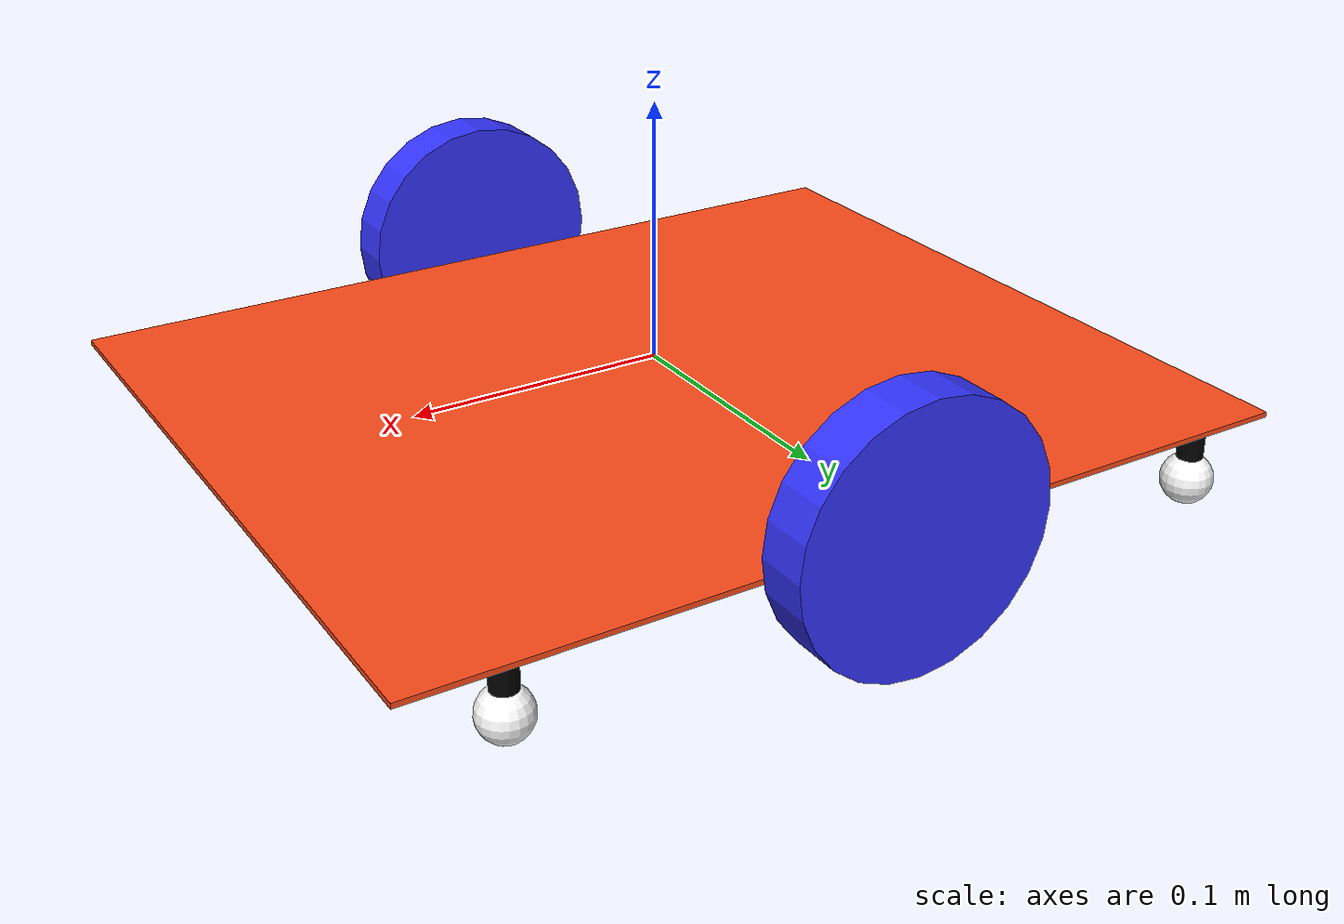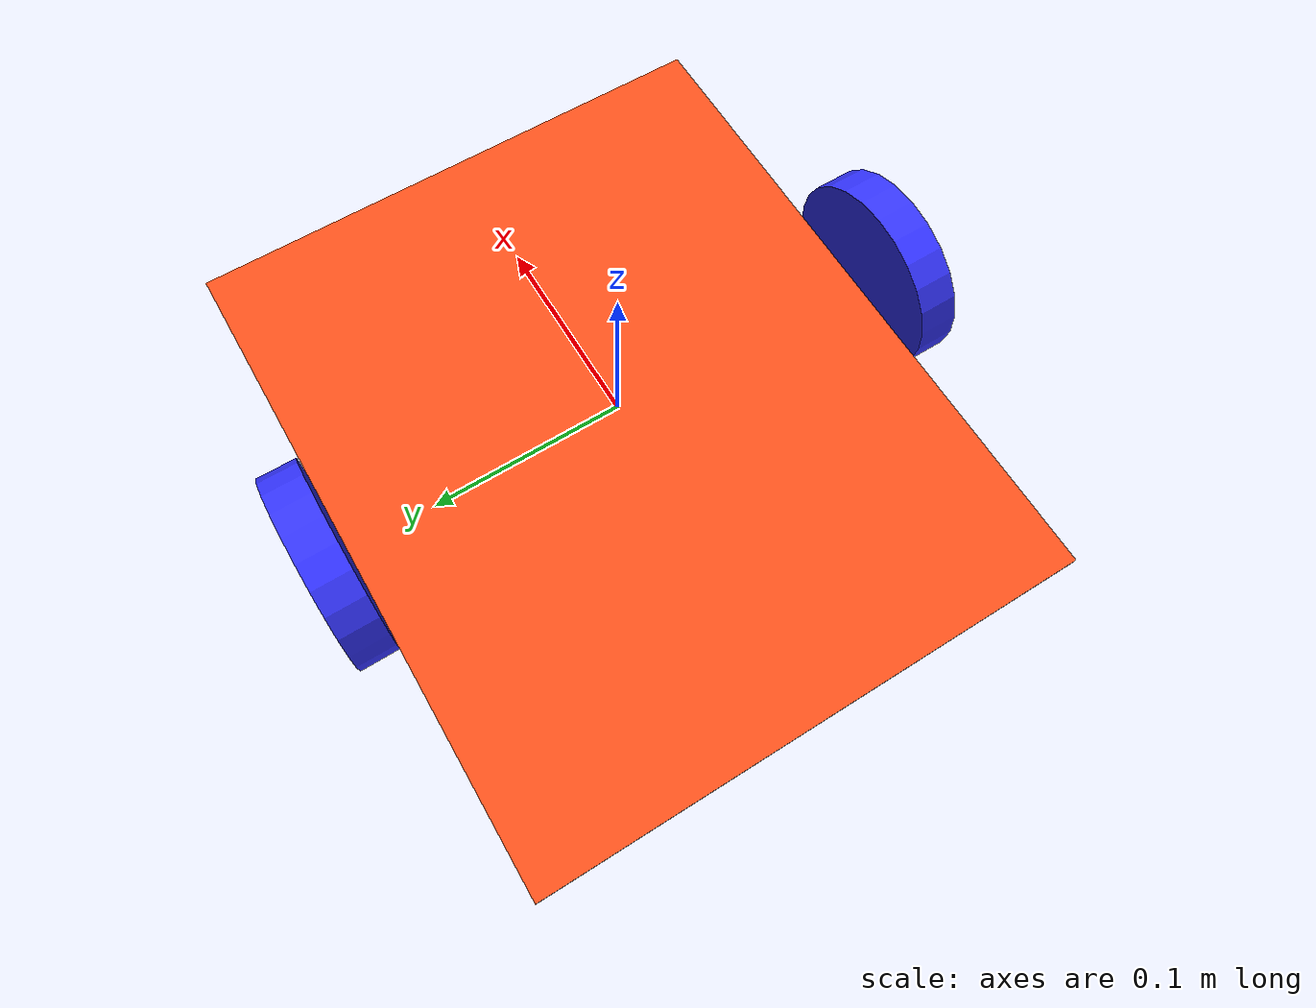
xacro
<?xml version="1.0"?>
<robot xmlns:xacro="http://www.ros.org/wiki/xacro" name = "gdgu_robot">

    <xacro:include filename="robot_inertia.xacro"/>

    <xacro:property name="chassis_length" value="0.35"/>
    <xacro:property name="chassis_width" value="0.29"/>
    <xacro:property name="chassis_height" value="0.002"/>
    <xacro:property name="chassis_mass" value="2.0"/>
    <xacro:property name="wheel_radius" value="0.05"/>
    <xacro:property name="wheel_thickness" value="0.02"/>
    <xacro:property name="wheel_mass" value="0.5"/>
    <xacro:property name="wheel_offset_x" value="0.175"/>
    <xacro:property name="wheel_offset_y" value="0.155"/>
    <xacro:property name="wheel_offset_z" value="0.01"/>
    <xacro:property name="caster_wheel_radius" value="0.01"/>
    <xacro:property name="caster_wheel_mass" value="0.01"/>
    <xacro:property name="caster_wheel_offset_x" value="0.015"/>
    <xacro:property name="caster_wheel_offset_z" value="${wheel_offset_z - wheel_radius + caster_wheel_radius}"/>

    <material name="white">
        <color rgba="1 1 1 1" />
    </material>

    <material name="orange">
        <color rgba="1 0.3 0.1 1"/>
    </material>

    <material name="blue">
        <color rgba="0.2 0.2 1 1"/>
    </material>

    <material name="black">
        <color rgba="0 0 0 1"/>
    </material>

    <material name="red">
        <color rgba="1 0 0 1"/>
    </material>

    <!-- BASE LINK -->

    <link name="base_link">

    </link>

    <!-- BASE_FOOTPRINT LINK -->

    <joint name="base_footprint_joint" type="fixed">
        <parent link="base_link"/>
        <child link="base_footprint"/>
        <origin xyz="0 0 0" rpy="0 0 0"/>
    </joint>

    <link name="base_footprint">
    </link>

    <!-- CHASSIS LINK -->

    <joint name="chassis_joint" type="fixed">
        <parent link="base_link"/>
        <child link="chassis_link"/>
        <origin xyz="${-wheel_offset_x} 0 ${-wheel_offset_z}"/>
    </joint>

    <link name="chassis_link">
        <visual>
            <origin xyz="${chassis_length/2} 0 ${chassis_height/2}"/>
            <geometry>
                <box size="${chassis_length} ${chassis_width} ${chassis_height}"/>
            </geometry>
            <material name="orange"/>
        </visual>
        <collision>
            <origin xyz="${chassis_length/2} 0 ${chassis_height/2}"/>
            <geometry>
                <box size="${chassis_length} ${chassis_width} ${chassis_height}"/>
            </geometry>
        </collision>
        <xacro:inertial_box mass="0.5" x="${chassis_length}" y="${chassis_width}" z="${chassis_height}">
            <origin xyz="${chassis_length/2} 0 ${chassis_height/2}" rpy="0 0 0"/>
        </xacro:inertial_box>
    </link>

    <gazebo reference="chassis_link">
        <material>Gazebo/Orange</material>
    </gazebo>

    <!-- LEFT WHEEL LINK -->

    <joint name="left_wheel" type="continuous">
        <parent link="base_link"/>
        <child link="lfw_link"/>
        <origin xyz="0 ${wheel_offset_y} 0" rpy="-${pi/2} 0 0" />
        <axis xyz="0 0 1"/>
    </joint>

    <transmission name="left_wheel_trans" type="SimpleTransmission">
    <type>transmission_interface/SimpleTransmission</type>
    <actuator name="left_wheel_motor">
      <mechanicalReduction>1</mechanicalReduction>
    </actuator>
    <joint name="left_wheel">
      <hardwareInterface>VelocityJointInterface</hardwareInterface>
    </joint>
    </transmission>

    <link name="lfw_link">
        <visual>
            <geometry>
                <cylinder radius="${wheel_radius}" length="${wheel_thickness}"/>
            </geometry>
            <material name="blue"/>
        </visual>
        <collision>
            <geometry>
                <sphere radius="${wheel_radius}"/>
            </geometry>
        </collision>
        <xacro:inertial_cylinder mass="${wheel_mass}" length="${wheel_thickness}" radius="${wheel_radius}">
            <origin xyz="0 0 0" rpy="0 0 0"/>
        </xacro:inertial_cylinder>
    </link>

    <gazebo reference="lfw_link">
        <material>Gazebo/Blue</material>
    </gazebo>

    <!-- RIGHT WHEEL LINK -->

    <joint name="right_wheel" type="continuous">
        <parent link="base_link"/>
        <child link="rfw_link"/>
        <origin xyz="0 ${-wheel_offset_y} 0" rpy="${pi/2} 0 0" />
        <axis xyz="0 0 -1"/>
    </joint>

    <transmission name="right_wheel_trans" type="SimpleTransmission">
    <type>transmission_interface/SimpleTransmission</type>
    <actuator name="right_wheel_motor">
      <mechanicalReduction>1</mechanicalReduction>
    </actuator>
    <joint name="right_wheel">
      <hardwareInterface>VelocityJointInterface</hardwareInterface>
    </joint>
    </transmission>

    <link name="rfw_link">
        <visual>
            <geometry>
                <cylinder radius="${wheel_radius}" length="${wheel_thickness}"/>
            </geometry>
            <material name="blue"/>
        </visual>
        <collision>
            <geometry>
                <sphere radius="${wheel_radius}"/>
            </geometry>
        </collision>
        <xacro:inertial_cylinder mass="${wheel_mass}" length="${wheel_thickness}" radius="${wheel_radius}">
            <origin xyz="0 0 0" rpy="0 0 0"/>
        </xacro:inertial_cylinder>
    </link>

    <gazebo reference="rfw_link">
        <material>Gazebo/Blue</material>
    </gazebo>

    <!--castor wheels-->

    <joint name="caster_wheel1_joint" type="fixed">
        <parent link="chassis_link"/>
        <child link="caster_wheel1_link"/>
        <origin xyz="${caster_wheel_offset_x} 0.125 ${caster_wheel_offset_z}"/>
    </joint>

    <link name="caster_wheel1_link">
        <visual>
            <geometry>
                <sphere radius="${caster_wheel_radius}"/>
            </geometry>
            <material name="white"/>
        </visual>
        <collision>
            <geometry>
                <sphere radius="${caster_wheel_radius}"/>
            </geometry>
        </collision>
        <xacro:inertial_sphere mass="${caster_wheel_mass}" radius="${caster_wheel_radius}">
            <origin xyz="0 0 0" rpy="0 0 0"/>
        </xacro:inertial_sphere>
    </link>

    <gazebo reference="caster_wheel1_link">
        <material>Gazebo/Red</material>
        <mu1 value="0.001"/>
        <mu2 value="0.001"/>
    </gazebo>

    <joint name="caster_wheel2_joint" type="fixed">
        <parent link="chassis_link"/>
        <child link="caster_wheel2_link"/>
        <origin xyz="${caster_wheel_offset_x} -0.125 ${caster_wheel_offset_z}"/>
    </joint>

    <link name="caster_wheel2_link">
        <visual>
            <geometry>
                <sphere radius="${caster_wheel_radius}"/>
            </geometry>
            <material name="white"/>
        </visual>
        <collision>
            <geometry>
                <sphere radius="${caster_wheel_radius}"/>
            </geometry>
        </collision>
        <xacro:inertial_sphere mass="${caster_wheel_mass}" radius="${caster_wheel_radius}">
            <origin xyz="0 0 0" rpy="0 0 0"/>
        </xacro:inertial_sphere>
    </link>

    <gazebo reference="caster_wheel2_link">
        <material>Gazebo/Red</material>
        <mu1 value="0.001"/>
        <mu2 value="0.001"/>
    </gazebo>

<joint name="caster_wheel3_joint" type="fixed">
        <parent link="chassis_link"/>
        <child link="caster_wheel3_link"/>
        <origin xyz="${caster_wheel_offset_x + 0.29} 0.125 ${caster_wheel_offset_z}"/>
    </joint>

    <link name="caster_wheel3_link">
        <visual>
            <geometry>
                <sphere radius="${caster_wheel_radius}"/>
            </geometry>
            <material name="white"/>
        </visual>
        <collision>
            <geometry>
                <sphere radius="${caster_wheel_radius}"/>
            </geometry>
        </collision>
        <xacro:inertial_sphere mass="${caster_wheel_mass}" radius="${caster_wheel_radius}">
            <origin xyz="0 0 0" rpy="0 0 0"/>
        </xacro:inertial_sphere>
    </link>

    <gazebo reference="caster_wheel3_link">
        <material>Gazebo/Red</material>
        <mu1 value="0.001"/>
        <mu2 value="0.001"/>
    </gazebo>

<joint name="caster_wheel4_joint" type="fixed">
        <parent link="chassis_link"/>
        <child link="caster_wheel4_link"/>
        <origin xyz="${caster_wheel_offset_x + 0.29} -0.125 ${caster_wheel_offset_z}"/>
    </joint>

    <link name="caster_wheel4_link">
        <visual>
            <geometry>
                <sphere radius="${caster_wheel_radius}"/>
            </geometry>
            <material name="white"/>
        </visual>
        <collision>
            <geometry>
                <sphere radius="${caster_wheel_radius}"/>
            </geometry>
        </collision>
        <xacro:inertial_sphere mass="${caster_wheel_mass}" radius="${caster_wheel_radius}">
            <origin xyz="0 0 0" rpy="0 0 0"/>
        </xacro:inertial_sphere>
    </link>

    <gazebo reference="caster_wheel4_link">
        <material>Gazebo/Red</material>
        <mu1 value="0.001"/>
        <mu2 value="0.001"/>
    </gazebo>

    <joint name="connector_cw1_joint" type="fixed">
        <parent link="caster_wheel1_link"/>
        <child link="connector_cw1_link"/>
        <origin xyz="0.0 0.0 0.02" rpy="0 0 0"/>
    </joint>
    <link name="connector_cw1_link">
        <visual>
            <geometry>
                <cylinder radius="0.005" length="0.022"/>
            </geometry>
            <material name="black"/>
        </visual>
        <collision>
            <geometry>
                <cylinder radius="0.005" length="0.022"/>
            </geometry>
        </collision>
        <xacro:inertial_cylinder mass = "0.1" radius = "0.005" length = "0.022">
            <origin xyz="0.0 0.0 0.0" rpy="0.0 0.0 0.0"/>
        </xacro:inertial_cylinder>
    </link>

    <!-- Connector for castor wheel 2 -->
    <joint name="connector_cw2_joint" type="fixed">
        <parent link="caster_wheel2_link"/>
        <child link="connector_cw2_link"/>
        <origin xyz="0.0 0.0 0.02" rpy="0 0 0"/>
    </joint>

    <link name="connector_cw2_link">
        <visual>
            <geometry>
                <cylinder radius="0.005" length="0.022"/>
            </geometry>
            <material name="black"/>
        </visual>
        <collision>
            <geometry>
                <cylinder radius="0.005" length="0.022"/>
            </geometry>
        </collision>
        <xacro:inertial_cylinder mass = "0.1" radius = "0.005" length = "0.022">
            <origin xyz="0.0 0.0 0.0" rpy="0.0 0.0 0.0"/>
        </xacro:inertial_cylinder>
    </link>

    <!-- Connector for castor wheel 3 -->
    <joint name="connector_cw3_joint" type="fixed">
        <parent link="caster_wheel3_link"/>
        <child link="connector_cw3_link"/>
        <origin xyz="0.0 0.0 0.02" rpy="0 0 0"/>
    </joint>
    <link name="connector_cw3_link">
        <visual>
            <geometry>
                <cylinder radius="0.005" length="0.022"/>
            </geometry>
            <material name="black"/>
        </visual>
        <collision>
            <geometry>
                <cylinder radius="0.005" length="0.022"/>
            </geometry>
        </collision>
        <xacro:inertial_cylinder mass = "0.1" radius = "0.005" length = "0.022">
            <origin xyz="0.0 0.0 0.0" rpy="0.0 0.0 0.0"/>
        </xacro:inertial_cylinder>
    </link>

    <!-- Connector for castor wheel 4 -->
    <joint name="connector_cw4_joint" type="fixed">
        <parent link="caster_wheel4_link"/>
        <child link="connector_cw4_link"/>
        <origin xyz="0.0 0.0 0.02" rpy="0 0 0"/>
    </joint>
    <link name="connector_cw4_link">
        <visual>
            <geometry>
                <cylinder radius="0.005" length="0.022"/>
            </geometry>
            <material name="black"/>
        </visual>
        <collision>
            <geometry>
                <cylinder radius="0.005" length="0.022"/>
            </geometry>
        </collision>
        <xacro:inertial_cylinder mass = "0.1" radius = "0.005" length = "0.022">
            <origin xyz="0.0 0.0 0.0" rpy="0.0 0.0 0.0"/>
        </xacro:inertial_cylinder>
    </link>

</robot>

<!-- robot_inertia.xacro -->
<robot xmlns:xacro="http://www.ros.org/wiki/xacro">

    <!--this file represents the mass and inertia of the robot model-->
    <xacro:macro name="inertial_box" params="mass x y z *origin">
        <inertial>
            <xacro:insert_block name="origin"/>
            <mass value="${mass}"/>
            <inertia ixx="${(1/12) * mass * (y*y+z*z)}" ixy="0.0" ixz="0.0"
                    iyy="${(1/12) * mass * (x*x+z*z)}" iyz="0.0"
                    izz="${(1/12) * mass * (x*x+y*y)}" />
        </inertial>
    </xacro:macro>

    <xacro:macro name="inertial_sphere" params="mass radius *origin">
        <inertial>
            <xacro:insert_block name="origin"/>
            <mass value="${mass}"/>
            <inertia ixx="${(2/5) * mass * (radius*radius)}" ixy="0.0" ixz="0.0"
                    iyy="${(2/5) * mass * (radius*radius)}" iyz="0.0"
                    izz="${(2/5) * mass * (radius*radius)}" />
        </inertial>
    </xacro:macro>

    <xacro:macro name="inertial_cylinder" params="mass radius length *origin">
        <inertial>
            <xacro:insert_block name="origin"/>
            <mass value="${mass}"/>
            <inertia ixx="${(1/12) * mass * (3*radius*radius + length*length)}" ixy="0.0" ixz="0.0"
                    iyy="${(1/12) * mass * (3*radius*radius + length*length)}" iyz="0.0"
                    izz="${(1/2) * mass * (radius*radius)}" />
        </inertial>
    </xacro:macro>

  <!-- Conversion macros -->
    <xacro:property name="cm2m"    value="${1/100.0}"/>
    <xacro:property name="mm2m"    value="${1/1000.0}"/>
    <xacro:property name="in2m"    value="0.0254"/>
    <xacro:property name="deg2rad" value="${pi/180.0}"/>

  <!-- Material colors -->
    <material name="material_black">
        <color rgba="0.1 0.1 0.1 1"/>
    </material>

    <material name="material_darkgray">
        <color rgba="0.3 0.3 0.3 1"/>
    </material>

    <material name="sensor_blue">
        <color rgba="0.1 0.2 0.8 1"/>
    </material>

    <material name="material_lightgray">
        <color rgba="0.5 0.5 0.5 1"/>
    </material>

</robot>
